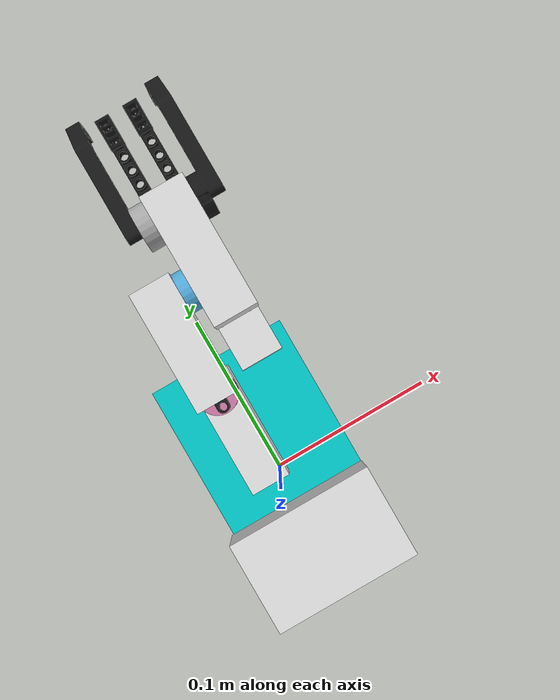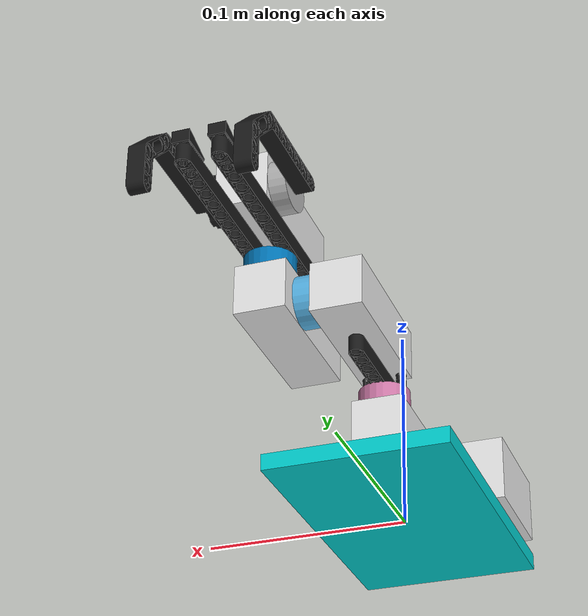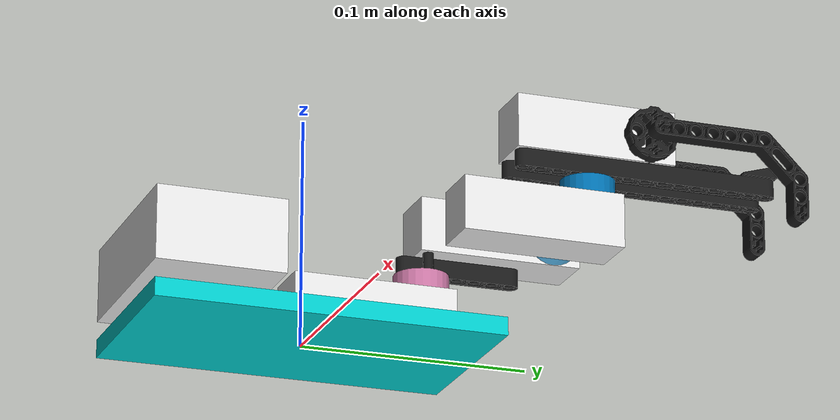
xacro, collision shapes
<?xml version="1.0" ?>
<robot name="lego_arm" xmlns:xacro="http://wiki.ros.org/xacro">
  <!-- Simple 4-DOF arm. See instructions/simple_arm.pdf for build guide -->

  <xacro:include filename="$(find lego_spike_description)/urdf/lego_materials.urdf.xacro" />
  <xacro:include filename="$(find lego_spike_description)/urdf/lego_hub.urdf.xacro" />
  <xacro:include filename="$(find lego_spike_description)/urdf/lego_base_plate.urdf.xacro" />
  <xacro:include filename="$(find lego_spike_description)/urdf/lego_motor.urdf.xacro" />
  <xacro:include filename="$(find lego_spike_description)/urdf/lego_distance_sensor.urdf.xacro" />
  <xacro:include filename="$(find lego_spike_description)/urdf/lego_color_sensor.urdf.xacro" />

  <link name="base_link" />

  <xacro:lego_base_plate name="base_plate" parent="base_link">
    <origin xyz="0 0 0" rpy="0 0 1.57079" />
  </xacro:lego_base_plate>

  <xacro:lego_hub name="lego_hub" parent="base_plate_top_link">
    <origin xyz="-${lego_stud_spacing * 6} 0 ${lego_stud_spacing * 1}" rpy="0 0 -${pi/2}" />
  </xacro:lego_hub>

  <xacro:lego_motor port="b" parent="base_plate_top_link">
    <origin xyz="${lego_stud_spacing * 4} ${lego_stud_spacing * 1} 0" />
  </xacro:lego_motor>

  <xacro:lego_motor port="d" parent="motor_b_wheel_link">
    <origin xyz="${lego_stud_spacing * 4} ${lego_stud_spacing * 1.5} ${lego_stud_spacing * 2.5}" rpy="${pi/2} 0 0" />
  </xacro:lego_motor>

  <xacro:lego_motor port="c" parent="motor_d_wheel_link">
    <origin xyz="-${lego_stud_spacing * 2} -${lego_stud_spacing * 1.5} ${lego_stud_spacing * 1.5}" rpy="-${pi/2} 0 0" />
  </xacro:lego_motor>

  <xacro:lego_motor port="a" parent="motor_c_wheel_link">
    <origin xyz="0 -${lego_stud_spacing * 1.5} ${lego_stud_spacing * 2.5}" rpy="-${pi/2} 0 0" />
  </xacro:lego_motor>

  <!-- Add the static brace to support the pitch motor -->
  <link name="yaw_brace">
    <visual>
      <geometry>
        <mesh filename="package://lego_spike_description/meshes/yaw_brace.stl" scale="0.0004 0.0004 0.0004"/>
      </geometry>
      <material name="lego_black" />
      <!-- exporting DAE from Stud.io isn't fantastic, and the website I used to convert to STL breaks the scale anyway. Sorry. -->
      <origin xyz="${lego_stud_spacing * 2 - 0.001} -${lego_stud_spacing / 2 - 0.001} -${lego_stud_spacing - 0.002}" rpy="${pi/2} 0 ${pi/2}" />
    </visual>
    <collision>
      <geometry>
        <mesh filename="package://lego_spike_description/meshes/yaw_brace.stl" scale="0.0004 0.0004 0.0004"/>
      </geometry>
      <origin xyz="${lego_stud_spacing * 2 - 0.001} -${lego_stud_spacing / 2 - 0.001} -${lego_stud_spacing - 0.002}" rpy="${pi/2} 0 ${pi/2}" />
    </collision>
  </link>
  <joint name="yaw_brace_joint" type="fixed">
    <parent link="motor_b_wheel_link" />
    <child link="yaw_brace" />
    <origin xyz="0 0 0" rpy="0 0 0" />
  </joint>

  <!-- Add the static fingers -->
  <link name="left_static_finger">
    <visual>
      <geometry>
        <mesh filename="package://lego_spike_description/meshes/static_finger.stl" scale="0.0004 0.0004 0.0004"/>
      </geometry>
      <material name="lego_black" />
      <!-- exporting DAE from Stud.io isn't fantastic, and the website I used to convert to STL breaks the scale anyway. Sorry. -->
      <origin xyz="${lego_stud_spacing * 3.5} ${lego_stud_spacing * 0.5 + 0.001} 0" rpy="${pi/2} 0 ${pi/2}" />
    </visual>
    <collision>
      <geometry>
        <mesh filename="package://lego_spike_description/meshes/static_finger.stl" scale="0.0004 0.0004 0.0004"/>
      </geometry>
      <origin xyz="${lego_stud_spacing * 3.5} ${lego_stud_spacing * 0.5 + 0.001} 0" rpy="${pi/2} 0 ${pi/2}" />
    </collision>
  </link>
  <joint name="left_static_finger_joint" type="fixed">
    <parent link="motor_c_wheel_link" />
    <child link="left_static_finger" />
    <origin xyz="0 0 0" rpy="0 0 0" />
  </joint>
  <link name="right_static_finger">
    <visual>
      <geometry>
        <mesh filename="package://lego_spike_description/meshes/static_finger.stl" scale="0.0004 0.0004 0.0004"/>
      </geometry>
      <material name="lego_black" />
      <!-- exporting DAE from Stud.io isn't fantastic, and the website I used to convert to STL breaks the scale anyway. Sorry. -->
      <origin xyz="${lego_stud_spacing * 3.5} -${lego_stud_spacing * 1.5 - 0.001} 0" rpy="${pi/2} 0 ${pi/2}" />
    </visual>
    <collision>
      <geometry>
        <mesh filename="package://lego_spike_description/meshes/static_finger.stl" scale="0.0004 0.0004 0.0004"/>
      </geometry>
      <origin xyz="${lego_stud_spacing * 3.5} -${lego_stud_spacing * 1.5 - 0.001} 0" rpy="${pi/2} 0 ${pi/2}" />
    </collision>
  </link>
  <joint name="right_static_finger_joint" type="fixed">
    <parent link="motor_c_wheel_link" />
    <child link="right_static_finger" />
    <origin xyz="0 0 0" rpy="0 0 0" />
  </joint>

  <!-- Add the mobile fingers -->
  <link name="mobile_fingers">
    <visual>
      <geometry>
        <mesh filename="package://lego_spike_description/meshes/mobile_fingers.stl" scale="0.0004 0.0004 0.0004"/>
      </geometry>
      <material name="lego_black" />
      <origin xyz="-${lego_stud_spacing * 3} ${lego_stud_spacing * 4.5} -${lego_stud_spacing * 1.5}" rpy="${pi/2} -${pi/2} ${pi/2}" />
    </visual>
    <collision>
      <geometry>
        <mesh filename="package://lego_spike_description/meshes/mobile_fingers.stl" scale="0.0004 0.0004 0.0004"/>
      </geometry>
      <origin xyz="-${lego_stud_spacing * 3} ${lego_stud_spacing * 4.5} -${lego_stud_spacing * 1.5}" rpy="${pi/2} -${pi/2} ${pi/2}" />
    </collision>
  </link>
  <joint name="mobile_finger_joint" type="fixed">
    <parent link="motor_a_wheel_link" />
    <child link="mobile_fingers" />
    <origin xyz="0 0 0" rpy="0 0 0" />
  </joint>
</robot>

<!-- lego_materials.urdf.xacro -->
<robot xmlns:xacro="http://wiki.ros.org/xacro">
  <material name="lego_white">
    <color rgba="0.9 0.9 0.9 1.0" />
  </material>
  <material name="lego_black">
    <color rgba="0.1 0.1 0.1 1.0" />
  </material>
  <material name="lego_teal">
    <color rgba="0.0 0.8 0.8 1.0" />
  </material>
  <material name="lego_yellow">
    <color rgba="0.8 0.8 0.0 1.0" />
  </material>

</robot>

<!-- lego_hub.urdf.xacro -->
<robot xmlns:xacro="http://wiki.ros.org/xacro">
  <xacro:include filename="$(find lego_spike_description)/urdf/lego_dimensions.urdf.xacro" />

  <xacro:macro name="lego_hub" params="name parent *origin">
    <link name="${name}_link">
      <visual>
        <geometry>
          <mesh filename="package://lego_spike_description/meshes/SpikePrimeHub.stl" scale="0.0004 0.0004 0.0004"/>
        </geometry>
        <material name="lego_white" />
        <origin xyz="0.004 00.004 0" rpy="1.5707963267948966 0 -1.5707963267948966" />
      </visual>
      <collision>
        <geometry>
          <box size="0.088 0.056 0.032" />
        </geometry>
        <origin xyz="0 0 0.016" rpy="0 0 0" />
      </collision>
    </link>
    <joint name="${name}_joint" type="fixed">
      <parent link="${parent}" />
      <child link="${name}_link" />
      <xacro:insert_block name="origin" />
    </joint>

    <link name="${name}_imu_link" />
    <joint name="${name}_imu_joint" type="fixed">
      <parent link="${name}_link" />
      <child link="${name}_imu_link" />
      <!-- TODO: exact IMU position -->
      <origin xyz="0 0 0" rpy="0 0 1.57079" />
    </joint>
  </xacro:macro>
</robot>

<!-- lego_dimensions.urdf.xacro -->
<robot xmlns:xacro="http://wiki.ros.org/xacro">
  <xacro:property name="pi" value="3.141592653589793"/>

  <xacro:property name="lego_stud_spacing"     value="0.0080"/> <!-- center-to-center -->
  <xacro:property name="lego_brick_height"     value="0.0096"/> <!-- excludes stud -->
  <xacro:property name="lego_brick_width"      value="0.0078"/> <!-- 1x1 brick side length -->
  <xacro:property name="lego_plate_height"     value="0.0032"/> <!-- excludes stud -->
  <xacro:property name="lego_stud_height"      value="0.0017"/>
</robot>

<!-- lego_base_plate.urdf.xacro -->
<robot xmlns:xacro="http://wiki.ros.org/xacro">
  <xacro:include filename="$(find lego_spike_description)/urdf/lego_dimensions.urdf.xacro" />

  <!--
    The 11x19 hole lego technic plate included in Lego Mindstorms 51515
    Model is centered on the middle with the long dimension along the X axis
  -->
  <xacro:macro name="lego_base_plate" params="name parent *origin">
    <link name="${name}_link">
      <visual>
        <geometry>
          <mesh filename="package://lego_spike_description/meshes/SpikePrimeBasePlate.stl" scale="0.0004 0.0004 0.0004"/>
        </geometry>
        <material name="lego_teal" />
        <origin xyz="-${lego_stud_spacing*1.5} -${lego_stud_spacing/2} 0" rpy="1.5707963267948966 0 -1.5707963267948966" />
      </visual>
      <collision>
        <geometry>
          <box size="${lego_stud_spacing * 19} ${lego_stud_spacing * 11} ${lego_stud_spacing}" />
        </geometry>
        <origin xyz="0 0 ${lego_brick_width/2}" rpy="0 0 0" />
      </collision>
    </link>
    <joint name="${name}_joint" type="fixed">
      <parent link="${parent}" />
      <child link="${name}_link" />
      <xacro:insert_block name="origin" />
    </joint>

    <link name="${name}_top_link" />
    <joint name="${name}_top_joint" type="fixed">
      <parent link="${name}_link" />
      <child link="${name}_top_link" />
      <!-- Height is the width of a standard brick, not the height of a brick! -->
      <origin xyz="0 0 ${lego_brick_width}" rpy="0 0 0" />
    </joint>
  </xacro:macro>
</robot>

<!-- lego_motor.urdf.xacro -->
<robot xmlns:xacro="http://wiki.ros.org/xacro">
  <xacro:include filename="$(find lego_spike_description)/urdf/lego_dimensions.urdf.xacro" />

  <!--
    Standard Lego Mindstorms 51515 motor
    Motor rotates around the Z axis
  -->
  <xacro:macro name="lego_motor" params="port parent *origin">
    <link name="motor_${port}_link">
      <visual>
        <geometry>
          <mesh filename="package://lego_spike_description/meshes/SpikePrimeMotor.stl" scale="0.0004 0.0004 0.0004"/>
        </geometry>
        <material name="lego_white" />
        <origin xyz="${lego_stud_spacing/2} 0.0045 0" rpy="1.5707963267948966 0 1.5707963267948966" />
      </visual>
      <collision>
        <geometry>
          <box size="${lego_stud_spacing * 9} ${lego_stud_spacing * 3} ${lego_stud_spacing * 3}" />
        </geometry>
        <origin xyz="0 0 ${lego_stud_spacing * 1.5}" rpy="0 0 0" />
      </collision>
    </link>
    <joint name="motor_${port}_joint" type="fixed">
      <parent link="${parent}" />
      <child link="motor_${port}_link" />
      <xacro:insert_block name="origin" />
    </joint>

    <link name="motor_${port}_wheel_link">
      <collision>
        <geometry>
          <cylinder radius="${lego_stud_spacing * 1.5}" length="${lego_stud_spacing}" />
        </geometry>
        <origin xyz="0 0 -${lego_stud_spacing * 0.5}" rpy="0 0 0" />
      </collision>
    </link>
    <joint name="motor_${port}_wheel_joint" type="continuous">
      <parent link="motor_${port}_link" />
      <child link="motor_${port}_wheel_link" />
      <origin xyz="0.024 0 0.032" rpy="0 0 0" />
      <axis xyz="0 0 1" />
    </joint>

    <link name="motor_${port}_axle_link" />
    <joint name="motor_${port}_axle_joint" type="fixed">
      <parent link="motor_${port}_wheel_link" />
      <child link="motor_${port}_axle_link" />
      <origin xyz="0 0 -${lego_brick_width * 4}" rpy="${pi} 0 0" />
    </joint>
  </xacro:macro>
</robot>
